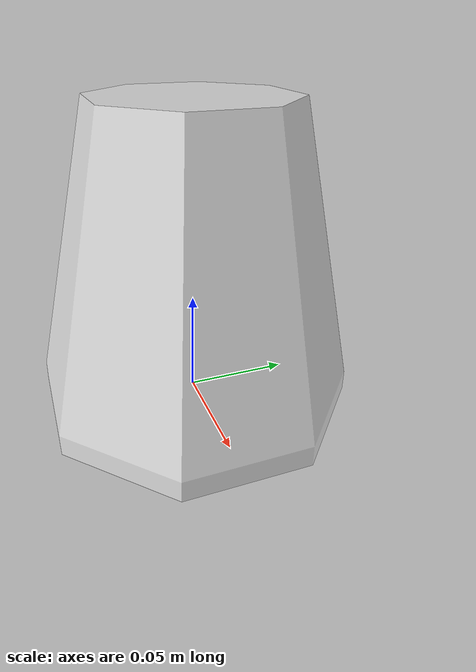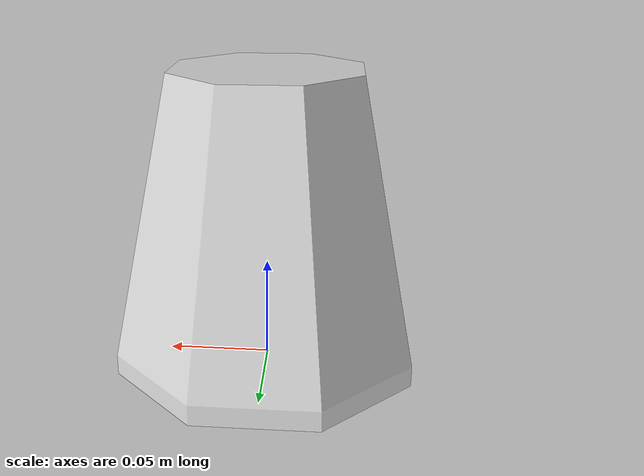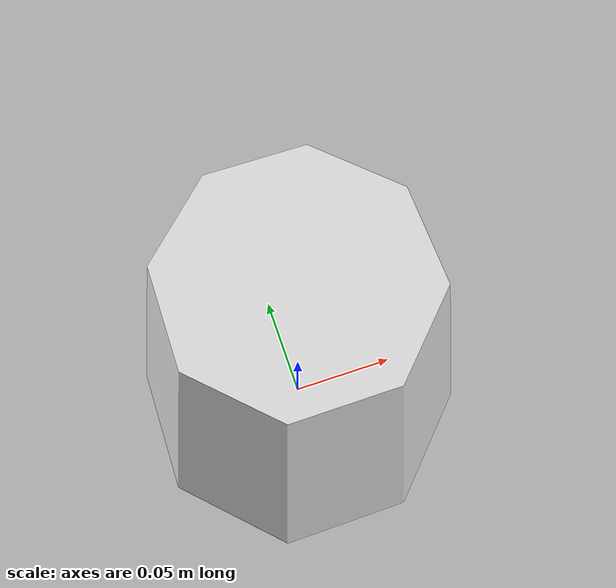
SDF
<?xml version="1.0" ?>
<sdf version="1.7">
  <model name="goal-neutral">
    <static>true</static>
    <link name="body">
      <pose>0 0 0 0 0 0</pose>
      <visual name="visual">
        <geometry>
          <mesh>
            <uri>model://goal-neutral/meshes/goal.stl</uri>
          </mesh>
        </geometry>
        <material>
        <ambient>0.86 0.86 0.86 1</ambient>
        <diffuse>0.86 0.86 0.86 1</diffuse>
        <specular>0.1 0.1 0.1 1.0</specular>
        <emissive>0 0 0 1</emissive>
      </material>
      </visual>
      <visual name="receptacle">
        <pose>0 0 0.13649999999999998 0 0 0</pose>
        <geometry>
          <cylinder>
            <radius>0.030</radius>
            <length>0.008</length>
          </cylinder>
        </geometry>
        <material>
        <ambient>0.08 0.08 0.08 1</ambient>
        <diffuse>0.08 0.08 0.08 1</diffuse>
        <specular>0.1 0.1 0.1 1.0</specular>
        <emissive>0 0 0 1</emissive>
      </material>
      </visual>
      <collision name="collision">
        <pose>0 0 0.07325 0 0 0</pose>
        <geometry>
          <cylinder>
            <radius>0.0715</radius>
            <length>0.1465</length>
          </cylinder>
        </geometry>
        <surface>
          <friction>
            <ode>
              <mu>0.8</mu>
              <mu2>0.8</mu2>
            </ode>
          </friction>
        </surface>
      </collision>
    </link>
  </model>
</sdf>
